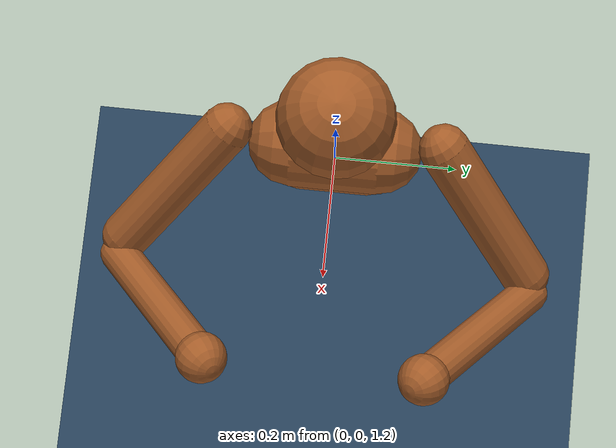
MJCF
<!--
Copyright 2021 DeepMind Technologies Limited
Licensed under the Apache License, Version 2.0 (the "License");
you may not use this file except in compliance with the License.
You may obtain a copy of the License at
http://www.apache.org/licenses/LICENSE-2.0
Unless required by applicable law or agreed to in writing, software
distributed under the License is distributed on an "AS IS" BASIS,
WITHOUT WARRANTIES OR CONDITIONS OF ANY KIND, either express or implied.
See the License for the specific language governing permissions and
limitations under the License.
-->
<mujoco model="Bionics Lab Arm">
  <option timestep="0.005"/>

  <visual>
    <map force="0.1" zfar="30"/>
    <rgba haze="0.15 0.25 0.35 1"/>
    <global offwidth="2560" offheight="1440" elevation="-20" azimuth="120"/>
  </visual>

  <statistic center="0 0 0.7"/>

  <asset>
    <texture type="skybox" builtin="gradient" rgb1=".3 .5 .7" rgb2="0 0 0" width="32" height="512"/>
    <texture name="body" type="cube" builtin="flat" mark="cross" width="128" height="128" rgb1="0.8 0.6 0.4" rgb2="0.8 0.6 0.4" markrgb="1 1 1" random="0.01"/>
    <material name="body" texture="body" texuniform="true" rgba="0.8 0.6 .4 1"/>
    <texture name="grid" type="2d" builtin="checker" width="512" height="512" rgb1=".1 .2 .3" rgb2=".2 .3 .4"/>
    <material name="grid" texture="grid" texrepeat="1 1" texuniform="true" reflectance=".2"/>
  </asset>

  <default>
    <motor ctrlrange="-1 1" ctrllimited="true"/>
    <default class="body">

      <!-- geoms -->
      <geom type="capsule" condim="1" friction=".7" solimp=".9 .99 .003" solref=".015 1" material="body"/>
      <default class="thigh">
        <geom size=".06"/>
      </default>
      <default class="arm_upper">
        <geom size=".04"/>
      </default>
      <default class="arm_lower">
        <geom size=".031"/>
      </default>
      <default class="hand">
        <geom type="sphere" size=".04"/>
      </default>

      <!-- joints -->
      <joint type="hinge" damping=".2" stiffness="1" armature=".01" limited="true" solimplimit="0 .99 .01"/>
      <default class="shoulder">
        <joint range="-85 60"/>
      </default>
      <default class="elbow">
        <joint range="-100 50" stiffness="0"/>
      </default>
    </default>
  </default>

  <worldbody>
    <geom name="floor" size="0 0 .05" type="plane" material="grid" condim="3"/>
    <light name="spotlight" mode="targetbodycom" target="torso" diffuse=".8 .8 .8" specular="0.3 0.3 0.3" pos="0 -6 4" cutoff="30"/>
    <body name="torso" pos="0 0 1.282" childclass="body">
      <light name="top" pos="0 0 2" mode="trackcom"/>
      <camera name="back" pos="-3 0 1" xyaxes="0 -1 0 1 0 2" mode="trackcom"/>
      <camera name="side" pos="0 -3 1" xyaxes="1 0 0 0 1 2" mode="trackcom"/>
      <freejoint name="root" group="0"/>
      <geom name="torso" fromto="0 -.07 0 0 .07 0" size=".07"/>
      <geom name="waist_upper" fromto="-.01 -.06 -.12 -.01 .06 -.12" size=".06"/>
      <body name="head" pos="0 0 .19">
        <geom name="head" type="sphere" size=".09"/>
        <camera name="egocentric" pos=".09 0 0" xyaxes="0 -1 0 .1 0 1" fovy="80"/>
      </body>
      <body name="upper_arm_right" pos="0 -.17 .06">
        <joint name="shoulder1_right" axis="2 1 1"  class="shoulder" group="1"/>
        <joint name="shoulder2_right" axis="0 -1 1" class="shoulder" group="2"/>
        <geom name="upper_arm_right" fromto="0 0 0 .16 -.16 -.16" class="arm_upper"/>
        <body name="lower_arm_right" pos=".18 -.18 -.18">
          <joint name="elbow_right" axis="0 -1 1" class="elbow" group="3"/>
          <geom name="lower_arm_right" fromto=".01 .01 .01 .17 .17 .17" class="arm_lower"/>
          <body name="hand_right" pos=".18 .18 .18">
            <geom name="hand_right" zaxis="1 1 1" class="hand"/>
          </body>
        </body>
      </body>
      <body name="upper_arm_left" pos="0 .17 .06">
        <joint name="shoulder1_left" axis="-2 1 -1" class="shoulder" group="4"/>
        <joint name="shoulder2_left" axis="0 -1 -1"  class="shoulder" group="5"/>
        <geom name="upper_arm_left" fromto="0 0 0 .16 .16 -.16" class="arm_upper"/>
        <body name="lower_arm_left" pos=".18 .18 -.18">
          <joint name="elbow_left" axis="0 -1 -1" class="elbow" group="6"/>
          <geom name="lower_arm_left" fromto=".01 -.01 .01 .17 -.17 .17" class="arm_lower"/>
          <body name="hand_left" pos=".18 -.18 .18">
            <geom name="hand_left" zaxis="1 -1 1" class="hand"/>
          </body>
        </body>
      </body>
    </body>
  </worldbody>
</mujoco>
